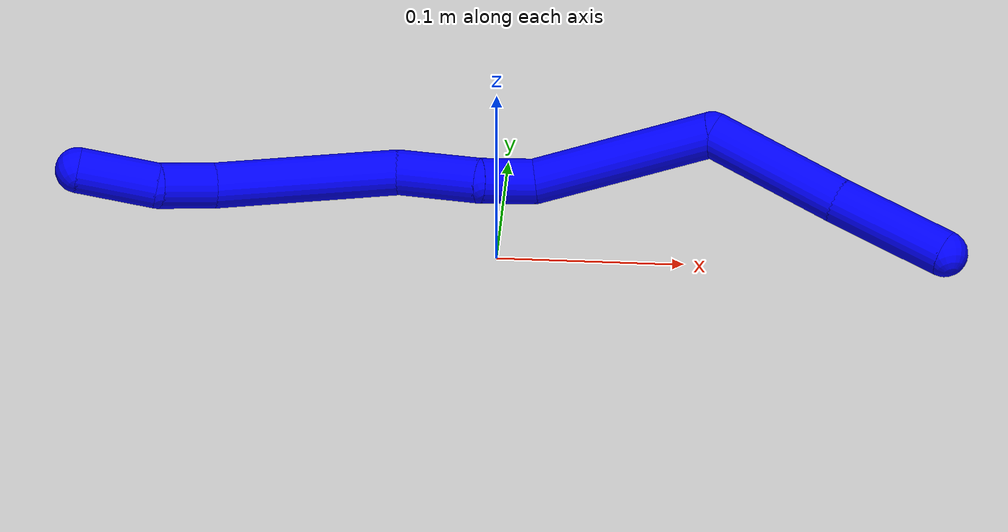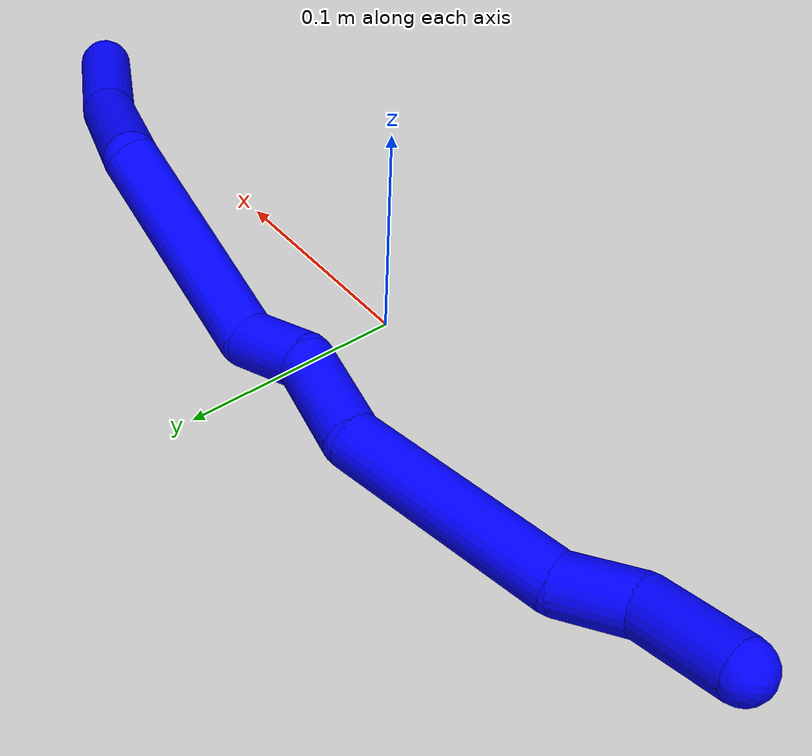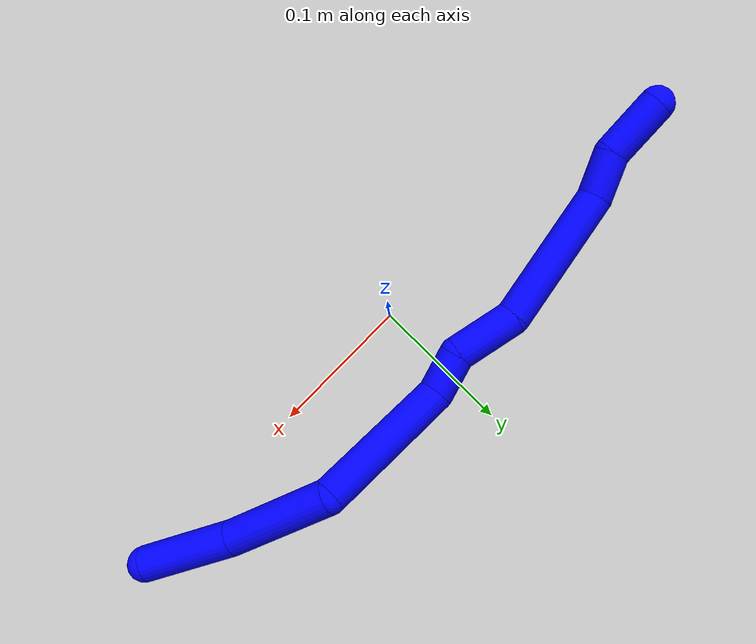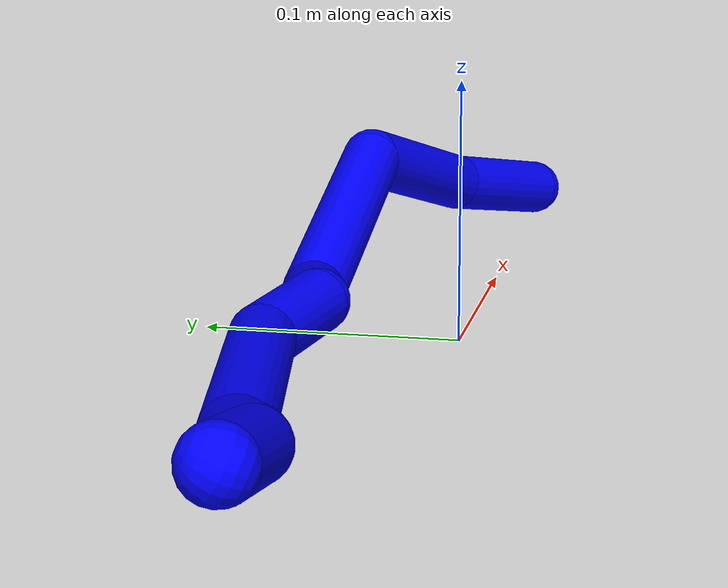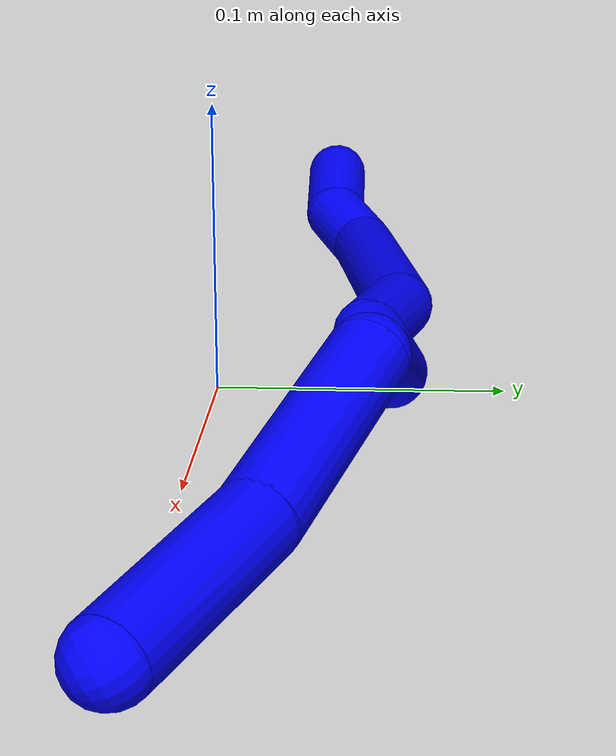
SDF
<sdf version="1.7">
 <world name="default">
  <plugin name="TubeGeneratorPlugin" filename="libtube_generator_plugin.so"/>
  <model name="photoneo_s_sensor">
   <static>1</static>
   <pose>0 0 2 1.57079 1.57079 3.14159</pose>
   <link name="link">
    <inertial><mass>0.1</mass></inertial>
    <sensor name="sensor" type="depth">
     <update_rate>30</update_rate>
     <camera>
      <horizontal_fov>1.22</horizontal_fov>
      <image><width>1920</width><height>1200</height><format>B8G8R8</format></image>
      <clip><near>0.1</near><far>4</far></clip>
      <depth_camera><output>points</output></depth_camera>
     </camera>
     <plugin name="camera_plugin" filename="libgazebo_ros_depth_camera.so">
      <baseline>0.2</baseline>
      <alwaysOn>1</alwaysOn>
      <updateRate>0.0</updateRate>
      <cameraName>camera_ir</cameraName>
      <imageTopicName>/camera/color/image_raw</imageTopicName>
      <cameraInfoTopicName>/camera/color/camera_info</cameraInfoTopicName>
      <depthImageTopicName>/camera/depth/image_raw</depthImageTopicName>
      <depthImageCameraInfoTopicName>/camera/depth/camera_info</depthImageCameraInfoTopicName>
      <pointCloudTopicName>/camera/depth/points</pointCloudTopicName>
      <frameName>fr_optical</frameName>
      <pointCloudCutoff>0.1</pointCloudCutoff>
      <pointCloudCutoffMax>2.0</pointCloudCutoffMax>
      <distortionK1>0</distortionK1>
      <distortionK2>0</distortionK2>
      <distortionK3>0</distortionK3>
      <distortionT1>0</distortionT1>
      <distortionT2>0</distortionT2>
      <CxPrime>0</CxPrime>
      <Cx>0</Cx>
      <Cy>0</Cy>
      <focalLength>0</focalLength>
      <hackBaseline>0</hackBaseline>
     </plugin>
    </sensor>
   </link>
  </model>
  <gravity>0 0 -9.8</gravity>
  <magnetic_field>6e-06 2.3e-05 -4.2e-05</magnetic_field>
  <atmosphere type="adiabatic"/>
  <physics name="default_physics" default="0" type="ode">
   <max_step_size>0.003</max_step_size>
   <real_time_factor>1</real_time_factor>
   <real_time_update_rate>1000</real_time_update_rate>
   <max_contacts>10000</max_contacts>
   <ode>
    <solver>
     <type>quick</type>
     <iters>100</iters>
     <sor>1.3</sor>
     <use_dynamic_moi_rescaling>0</use_dynamic_moi_rescaling>
    </solver>
    <constraints>
     <contact_max_correcting_vel>0</contact_max_correcting_vel>
     <contact_surface_layer>0.001</contact_surface_layer>
     <cfm>0</cfm>
     <erp>0.2</erp>
    </constraints>
   </ode>
  </physics>
  <scene><ambient>0.4 0.4 0.4 1</ambient><background>0.7 0.7 0.7 1</background><shadows>0</shadows></scene>
  <audio><device>default</device></audio>
  <spherical_coordinates>
   <surface_model>EARTH_WGS84</surface_model>
   <latitude_deg>0</latitude_deg>
   <longitude_deg>0</longitude_deg>
   <elevation>0</elevation>
   <heading_deg>0</heading_deg>
  </spherical_coordinates>
  <model name="bin">
   <static>1</static>
   <link name="bottom">
    <collision name="collision-bottom">
     <pose>0 0 -0.01 0 -0 0</pose>
     <geometry><box><size>0.8 0.6 0.02</size></box></geometry>
     <surface>
      <friction><ode><mu>100</mu><mu2>100</mu2></ode></friction>
      <contact><collide_bitmask>65535</collide_bitmask></contact>
     </surface>
    </collision>
   </link>
   <link name="west_wall">
    <collision name="collision-west_wall">
     <pose>-0.41 0 0.1 0 -0 0</pose>
     <geometry><box><size>0.02 0.6 0.2</size></box></geometry>
     <surface>
      <friction><ode><mu>100</mu><mu2>100</mu2></ode></friction>
      <contact><collide_bitmask>65535</collide_bitmask></contact>
     </surface>
    </collision>
   </link>
   <link name="east_wall">
    <collision name="collision-east_wall">
     <pose>0.41 0 0.1 0 -0 0</pose>
     <geometry><box><size>0.02 0.6 0.2</size></box></geometry>
     <surface>
      <friction><ode><mu>100</mu><mu2>100</mu2></ode></friction>
      <contact><collide_bitmask>65535</collide_bitmask></contact>
     </surface>
    </collision>
   </link>
   <link name="south_wall">
    <collision name="collision-south_wall">
     <pose>0 -0.31 0.1 0 -0 0</pose>
     <geometry><box><size>0.8 0.02 0.2</size></box></geometry>
     <surface>
      <friction><ode><mu>100</mu><mu2>100</mu2></ode></friction>
      <contact><collide_bitmask>65535</collide_bitmask></contact>
     </surface>
    </collision>
   </link>
   <link name="north_wall">
    <collision name="collision-north_wall">
     <pose>0 0.31 0.1 0 -0 0</pose>
     <geometry><box><size>0.8 0.02 0.2</size></box></geometry>
     <surface>
      <friction><ode><mu>100</mu><mu2>100</mu2></ode></friction>
      <contact><collide_bitmask>65535</collide_bitmask></contact>
     </surface>
    </collision>
   </link>
  </model>
  <model name="1">
   <static>0</static>
   <link name="1">
    <collision name="collision-cylinder-e_1_1_4">
     <pose>-0.022769 0.002974 0.02332 -0.126841 -0.769406 0.051412</pose>
     <geometry><cylinder><radius>0.0125</radius><length>0.065456</length></cylinder></geometry>
     <surface>
      <friction><ode><mu>1.16</mu><mu2>1.16</mu2><slip1>0</slip1><slip2>0</slip2></ode></friction>
      <contact><ode><kp>1e+06</kp><kd>1</kd><max_vel>0</max_vel><min_depth>0.001</min_depth></ode></contact>
     </surface>
    </collision>
    <visual name="visual-cylinder-e_1_1_4">
     <pose>-0.022769 0.002974 0.02332 -0.126841 -0.769406 0.051412</pose>
     <geometry><cylinder><radius>0.0125</radius><length>0.065456</length></cylinder></geometry>
     <material><ambient>0 0 1 1</ambient></material>
    </visual>
    <collision name="collision-cylinder-e_2_4_5">
     <pose>-0.073917 0.003661 0.072498 0.088226 -0.829919 -0.038888</pose>
     <geometry><cylinder><radius>0.0125</radius><length>0.07692</length></cylinder></geometry>
     <surface>
      <friction><ode><mu>1.16</mu><mu2>1.16</mu2><slip1>0</slip1><slip2>0</slip2></ode></friction>
      <contact><ode><kp>1e+06</kp><kd>1</kd><max_vel>0</max_vel><min_depth>0.001</min_depth></ode></contact>
     </surface>
    </collision>
    <visual name="visual-cylinder-e_2_4_5">
     <pose>-0.073917 0.003661 0.072498 0.088226 -0.829919 -0.038888</pose>
     <geometry><cylinder><radius>0.0125</radius><length>0.07692</length></cylinder></geometry>
     <material><ambient>0 0 1 1</ambient></material>
    </visual>
    <collision name="collision-cylinder-e_3_5_6">
     <pose>-0.149306 0.020986 0.105049 -1.24188 -1.15559 0.872838</pose>
     <geometry><cylinder><radius>0.0125</radius><length>0.102751</length></cylinder></geometry>
     <surface>
      <friction><ode><mu>1.16</mu><mu2>1.16</mu2><slip1>0</slip1><slip2>0</slip2></ode></friction>
      <contact><ode><kp>1e+06</kp><kd>1</kd><max_vel>0</max_vel><min_depth>0.001</min_depth></ode></contact>
     </surface>
    </collision>
    <visual name="visual-cylinder-e_3_5_6">
     <pose>-0.149306 0.020986 0.105049 -1.24188 -1.15559 0.872838</pose>
     <geometry><cylinder><radius>0.0125</radius><length>0.102751</length></cylinder></geometry>
     <material><ambient>0 0 1 1</ambient></material>
    </visual>
    <collision name="collision-cylinder-e_4_6_7">
     <pose>-0.211551 0.037471 0.113222 1.12913 -1.34749 -0.936281</pose>
     <geometry><cylinder><radius>0.0125</radius><length>0.031245</length></cylinder></geometry>
     <surface>
      <friction><ode><mu>1.16</mu><mu2>1.16</mu2><slip1>0</slip1><slip2>0</slip2></ode></friction>
      <contact><ode><kp>1e+06</kp><kd>1</kd><max_vel>0</max_vel><min_depth>0.001</min_depth></ode></contact>
     </surface>
    </collision>
    <visual name="visual-cylinder-e_4_6_7">
     <pose>-0.211551 0.037471 0.113222 1.12913 -1.34749 -0.936281</pose>
     <geometry><cylinder><radius>0.0125</radius><length>0.031245</length></cylinder></geometry>
     <material><ambient>0 0 1 1</ambient></material>
    </visual>
    <collision name="collision-cylinder-e_5_7_8">
     <pose>-0.247161 0.038954 0.124549 -0.437893 -1.08057 0.265367</pose>
     <geometry><cylinder><radius>0.0125</radius><length>0.046191</length></cylinder></geometry>
     <surface>
      <friction><ode><mu>1.16</mu><mu2>1.16</mu2><slip1>0</slip1><slip2>0</slip2></ode></friction>
      <contact><ode><kp>1e+06</kp><kd>1</kd><max_vel>0</max_vel><min_depth>0.001</min_depth></ode></contact>
     </surface>
    </collision>
    <visual name="visual-cylinder-e_5_7_8">
     <pose>-0.247161 0.038954 0.124549 -0.437893 -1.08057 0.265367</pose>
     <geometry><cylinder><radius>0.0125</radius><length>0.046191</length></cylinder></geometry>
     <material><ambient>0 0 1 1</ambient></material>
    </visual>
    <collision name="collision-cylinder-e_6_8_9">
     <pose>-0.317815 0.043377 0.140356 0.031534 -1.45276 -0.028016</pose>
     <geometry><cylinder><radius>0.0125</radius><length>0.101263</length></cylinder></geometry>
     <surface>
      <friction><ode><mu>1.16</mu><mu2>1.16</mu2><slip1>0</slip1><slip2>0</slip2></ode></friction>
      <contact><ode><kp>1e+06</kp><kd>1</kd><max_vel>0</max_vel><min_depth>0.001</min_depth></ode></contact>
     </surface>
    </collision>
    <visual name="visual-cylinder-e_6_8_9">
     <pose>-0.317815 0.043377 0.140356 0.031534 -1.45276 -0.028016</pose>
     <geometry><cylinder><radius>0.0125</radius><length>0.101263</length></cylinder></geometry>
     <material><ambient>0 0 1 1</ambient></material>
    </visual>
    <collision name="collision-cylinder-e_7_9_10">
     <pose>-0.383483 0.03795 0.146225 1.58807 -1.24258 -1.25898</pose>
     <geometry><cylinder><radius>0.0125</radius><length>0.032512</length></cylinder></geometry>
     <surface>
      <friction><ode><mu>1.16</mu><mu2>1.16</mu2><slip1>0</slip1><slip2>0</slip2></ode></friction>
      <contact><ode><kp>1e+06</kp><kd>1</kd><max_vel>0</max_vel><min_depth>0.001</min_depth></ode></contact>
     </surface>
    </collision>
    <visual name="visual-cylinder-e_7_9_10">
     <pose>-0.383483 0.03795 0.146225 1.58807 -1.24258 -1.25898</pose>
     <geometry><cylinder><radius>0.0125</radius><length>0.032512</length></cylinder></geometry>
     <material><ambient>0 0 1 1</ambient></material>
    </visual>
    <collision name="collision-cylinder-e_8_10_2">
     <pose>-0.419196 0.029603 0.153473 0.400558 -1.19712 -0.275153</pose>
     <geometry><cylinder><radius>0.0125</radius><length>0.043663</length></cylinder></geometry>
     <surface>
      <friction><ode><mu>1.16</mu><mu2>1.16</mu2><slip1>0</slip1><slip2>0</slip2></ode></friction>
      <contact><ode><kp>1e+06</kp><kd>1</kd><max_vel>0</max_vel><min_depth>0.001</min_depth></ode></contact>
     </surface>
    </collision>
    <visual name="visual-cylinder-e_8_10_2">
     <pose>-0.419196 0.029603 0.153473 0.400558 -1.19712 -0.275153</pose>
     <geometry><cylinder><radius>0.0125</radius><length>0.043663</length></cylinder></geometry>
     <material><ambient>0 0 1 1</ambient></material>
    </visual>
    <collision name="collision-sphere-2">
     <pose>-0.43952 0.026495 0.160811 0 -0 0</pose>
     <geometry><sphere><radius>0.0125</radius></sphere></geometry>
     <surface>
      <friction><ode><mu>1.16</mu><mu2>1.16</mu2><slip1>0</slip1><slip2>0</slip2></ode></friction>
      <contact><ode><kp>1e+06</kp><kd>1</kd><max_vel>0</max_vel><min_depth>0.001</min_depth></ode></contact>
     </surface>
    </collision>
    <visual name="visual-sphere-2">
     <pose>-0.43952 0.026495 0.160811 0 -0 0</pose>
     <geometry><sphere><radius>0.0125</radius></sphere></geometry>
     <material><ambient>0 0 1 1</ambient></material>
    </visual>
    <collision name="collision-sphere-10">
     <pose>-0.398871 0.03271 0.146134 0 -0 0</pose>
     <geometry><sphere><radius>0.0125</radius></sphere></geometry>
     <surface>
      <friction><ode><mu>1.16</mu><mu2>1.16</mu2><slip1>0</slip1><slip2>0</slip2></ode></friction>
      <contact><ode><kp>1e+06</kp><kd>1</kd><max_vel>0</max_vel><min_depth>0.001</min_depth></ode></contact>
     </surface>
    </collision>
    <visual name="visual-sphere-10">
     <pose>-0.398871 0.03271 0.146134 0 -0 0</pose>
     <geometry><sphere><radius>0.0125</radius></sphere></geometry>
     <material><ambient>0 0 1 1</ambient></material>
    </visual>
    <collision name="collision-sphere-9">
     <pose>-0.368095 0.043189 0.146315 0 -0 0</pose>
     <geometry><sphere><radius>0.0125</radius></sphere></geometry>
     <surface>
      <friction><ode><mu>1.16</mu><mu2>1.16</mu2><slip1>0</slip1><slip2>0</slip2></ode></friction>
      <contact><ode><kp>1e+06</kp><kd>1</kd><max_vel>0</max_vel><min_depth>0.001</min_depth></ode></contact>
     </surface>
    </collision>
    <visual name="visual-sphere-9">
     <pose>-0.368095 0.043189 0.146315 0 -0 0</pose>
     <geometry><sphere><radius>0.0125</radius></sphere></geometry>
     <material><ambient>0 0 1 1</ambient></material>
    </visual>
    <collision name="collision-sphere-4">
     <pose>-0.045538 0.005948 0.046641 0 -0 0</pose>
     <geometry><sphere><radius>0.0125</radius></sphere></geometry>
     <surface>
      <friction><ode><mu>1.16</mu><mu2>1.16</mu2><slip1>0</slip1><slip2>0</slip2></ode></friction>
      <contact><ode><kp>1e+06</kp><kd>1</kd><max_vel>0</max_vel><min_depth>0.001</min_depth></ode></contact>
     </surface>
    </collision>
    <visual name="visual-sphere-4">
     <pose>-0.045538 0.005948 0.046641 0 -0 0</pose>
     <geometry><sphere><radius>0.0125</radius></sphere></geometry>
     <material><ambient>0 0 1 1</ambient></material>
    </visual>
    <collision name="collision-sphere-1">
     <geometry><sphere><radius>0.0125</radius></sphere></geometry>
     <surface>
      <friction><ode><mu>1.16</mu><mu2>1.16</mu2><slip1>0</slip1><slip2>0</slip2></ode></friction>
      <contact><ode><kp>1e+06</kp><kd>1</kd><max_vel>0</max_vel><min_depth>0.001</min_depth></ode></contact>
     </surface>
    </collision>
    <visual name="visual-sphere-1">
     <geometry><sphere><radius>0.0125</radius></sphere></geometry>
     <material><ambient>0 0 1 1</ambient></material>
    </visual>
    <collision name="collision-sphere-8">
     <pose>-0.267536 0.043565 0.134396 0 -0 0</pose>
     <geometry><sphere><radius>0.0125</radius></sphere></geometry>
     <surface>
      <friction><ode><mu>1.16</mu><mu2>1.16</mu2><slip1>0</slip1><slip2>0</slip2></ode></friction>
      <contact><ode><kp>1e+06</kp><kd>1</kd><max_vel>0</max_vel><min_depth>0.001</min_depth></ode></contact>
     </surface>
    </collision>
    <visual name="visual-sphere-8">
     <pose>-0.267536 0.043565 0.134396 0 -0 0</pose>
     <geometry><sphere><radius>0.0125</radius></sphere></geometry>
     <material><ambient>0 0 1 1</ambient></material>
    </visual>
    <collision name="collision-sphere-5">
     <pose>-0.102296 0.001373 0.098355 0 -0 0</pose>
     <geometry><sphere><radius>0.0125</radius></sphere></geometry>
     <surface>
      <friction><ode><mu>1.16</mu><mu2>1.16</mu2><slip1>0</slip1><slip2>0</slip2></ode></friction>
      <contact><ode><kp>1e+06</kp><kd>1</kd><max_vel>0</max_vel><min_depth>0.001</min_depth></ode></contact>
     </surface>
    </collision>
    <visual name="visual-sphere-5">
     <pose>-0.102296 0.001373 0.098355 0 -0 0</pose>
     <geometry><sphere><radius>0.0125</radius></sphere></geometry>
     <material><ambient>0 0 1 1</ambient></material>
    </visual>
    <collision name="collision-sphere-6">
     <pose>-0.196317 0.040599 0.111743 0 -0 0</pose>
     <geometry><sphere><radius>0.0125</radius></sphere></geometry>
     <surface>
      <friction><ode><mu>1.16</mu><mu2>1.16</mu2><slip1>0</slip1><slip2>0</slip2></ode></friction>
      <contact><ode><kp>1e+06</kp><kd>1</kd><max_vel>0</max_vel><min_depth>0.001</min_depth></ode></contact>
     </surface>
    </collision>
    <visual name="visual-sphere-6">
     <pose>-0.196317 0.040599 0.111743 0 -0 0</pose>
     <geometry><sphere><radius>0.0125</radius></sphere></geometry>
     <material><ambient>0 0 1 1</ambient></material>
    </visual>
    <collision name="collision-sphere-7">
     <pose>-0.226786 0.034343 0.114701 0 -0 0</pose>
     <geometry><sphere><radius>0.0125</radius></sphere></geometry>
     <surface>
      <friction><ode><mu>1.16</mu><mu2>1.16</mu2><slip1>0</slip1><slip2>0</slip2></ode></friction>
      <contact><ode><kp>1e+06</kp><kd>1</kd><max_vel>0</max_vel><min_depth>0.001</min_depth></ode></contact>
     </surface>
    </collision>
    <visual name="visual-sphere-7">
     <pose>-0.226786 0.034343 0.114701 0 -0 0</pose>
     <geometry><sphere><radius>0.0125</radius></sphere></geometry>
     <material><ambient>0 0 1 1</ambient></material>
    </visual>
    <inertial>
     <pose>-0.206995 0.025043 0.105711 0 -0 0</pose>
     <mass>0.5</mass>
     <inertia>
      <ixx>8.3e-05</ixx>
      <ixy>0</ixy>
      <ixz>0</ixz>
      <iyy>0.000294</iyy>
      <iyz>0</iyz>
      <izz>0.000227</izz>
     </inertia>
    </inertial>
   </link>
   <pose>0.238398 0.001093 0.011499 -1.09176 -0.076221 0.275331</pose>
  </model>
 </world>
</sdf>
